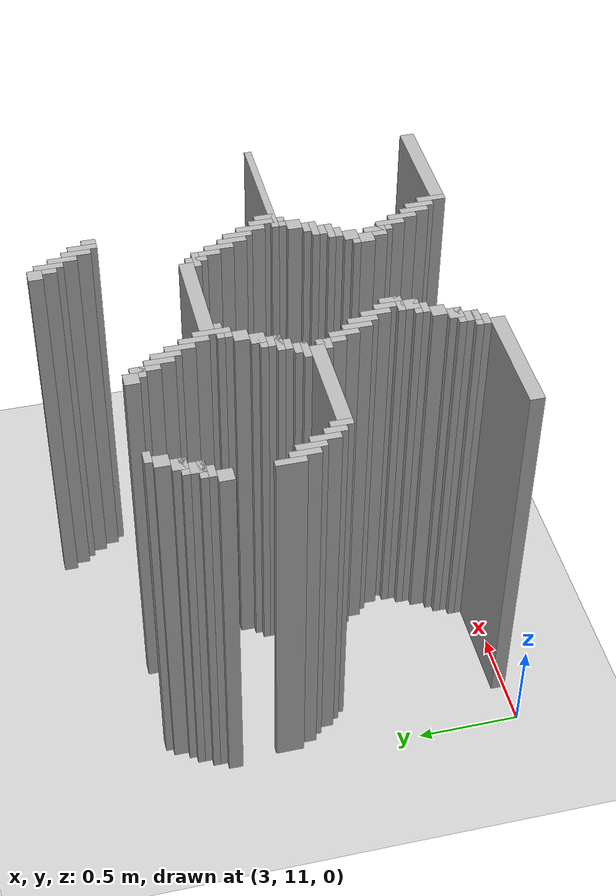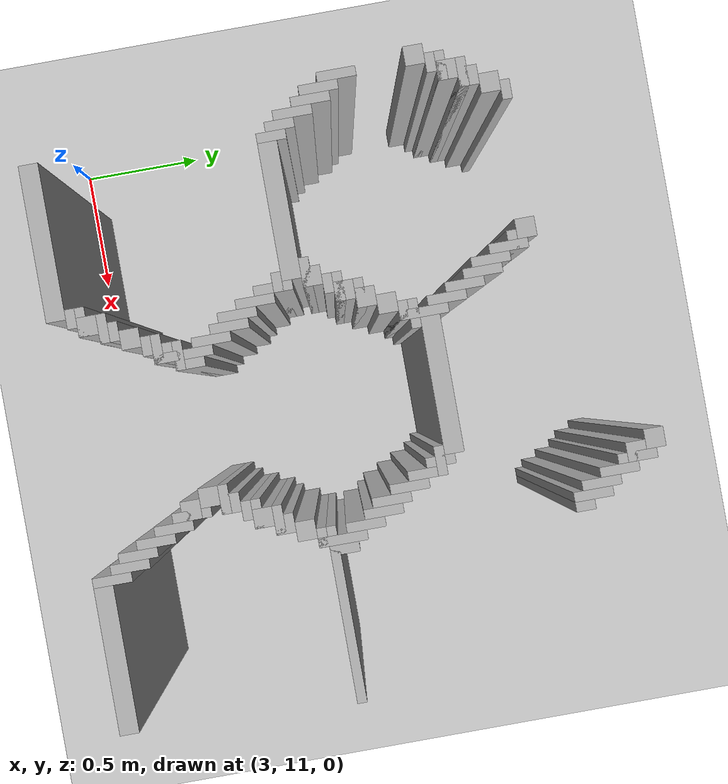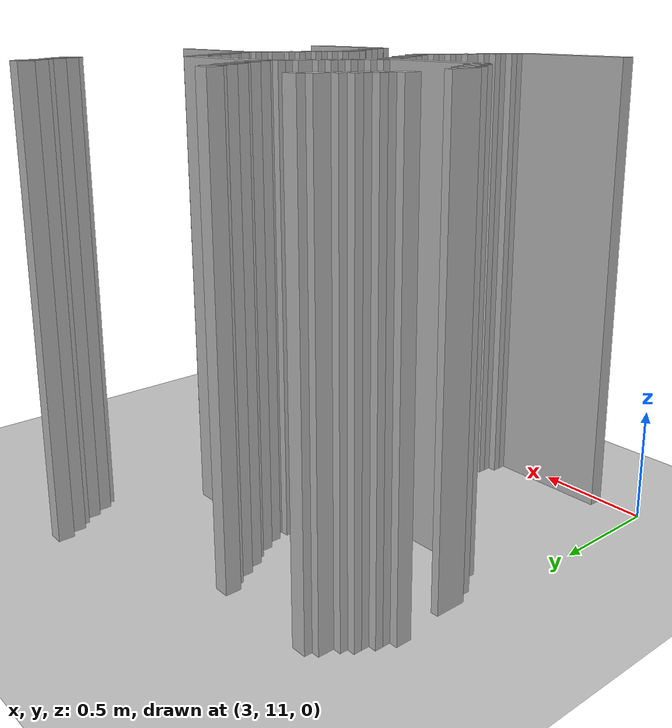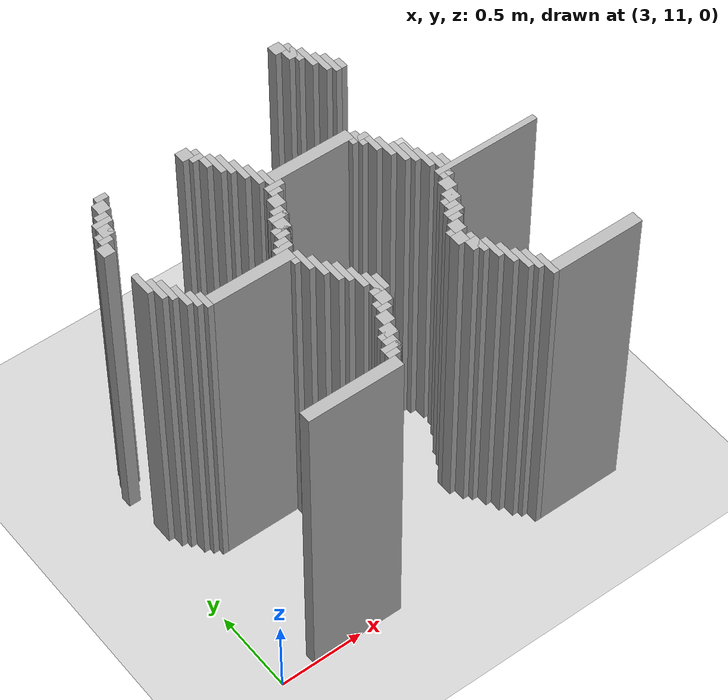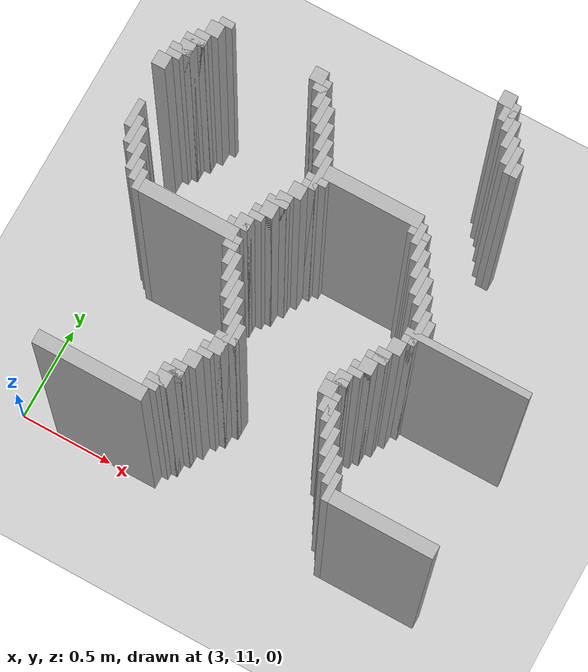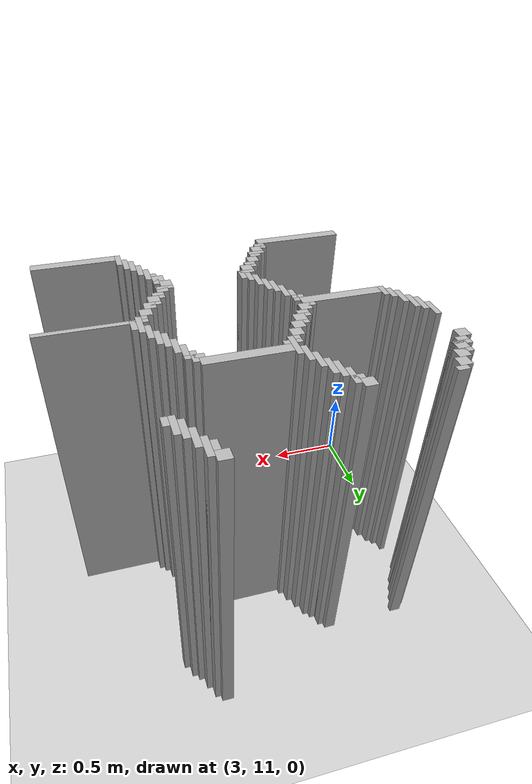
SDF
<sdf version="1.6">
 <world name="slam_world">
  <model name="ground_plane">
   <static>true</static>
   <link name="link">
    <collision name="collision">
     <geometry><plane><normal>0 0 1</normal><size>100 100</size></plane></geometry>
    </collision>
    <visual name="visual">
     <geometry><plane><normal>0 0 1</normal><size>100 100</size></plane></geometry>
     <material>
      <ambient>0.8 0.8 0.8 1</ambient>
      <diffuse>0.8 0.8 0.8 1</diffuse>
      <specular>0.8 0.8 0.8 1</specular>
     </material>
    </visual>
   </link>
  </model>
  <model name="wall_1465">
   <static>true</static>
   <pose>4.524361948955916 13.016241299303944 1.0 0 0 0</pose>
   <link name="link">
    <collision name="collision">
     <geometry><box><size>0.06960556844547564 0.06960556844547564 2.0</size></box></geometry>
    </collision>
    <visual name="visual">
     <geometry><box><size>0.06960556844547564 0.06960556844547564 2.0</size></box></geometry>
     <material><ambient>0.5 0.5 0.5 1</ambient><diffuse>0.7 0.7 0.7 1</diffuse></material>
    </visual>
   </link>
  </model>
  <model name="wall_1477">
   <static>true</static>
   <pose>4.576566125290023 12.946635730858468 1.0 0 0 0</pose>
   <link name="link">
    <collision name="collision">
     <geometry><box><size>0.03480278422273782 0.13921113689095127 2.0</size></box></geometry>
    </collision>
    <visual name="visual">
     <geometry><box><size>0.03480278422273782 0.13921113689095127 2.0</size></box></geometry>
     <material><ambient>0.5 0.5 0.5 1</ambient><diffuse>0.7 0.7 0.7 1</diffuse></material>
    </visual>
   </link>
  </model>
  <model name="wall_1489">
   <static>true</static>
   <pose>4.559164733178654 12.946635730858468 1.0 0 0 0</pose>
   <link name="link">
    <collision name="collision">
     <geometry><box><size>0.06960556844547564 0.06960556844547564 2.0</size></box></geometry>
    </collision>
    <visual name="visual">
     <geometry><box><size>0.06960556844547564 0.06960556844547564 2.0</size></box></geometry>
     <material><ambient>0.5 0.5 0.5 1</ambient><diffuse>0.7 0.7 0.7 1</diffuse></material>
    </visual>
   </link>
  </model>
  <model name="wall_1501">
   <static>true</static>
   <pose>4.611368909512761 12.877030162412993 1.0 0 0 0</pose>
   <link name="link">
    <collision name="collision">
     <geometry><box><size>0.03480278422273782 0.13921113689095127 2.0</size></box></geometry>
    </collision>
    <visual name="visual">
     <geometry><box><size>0.03480278422273782 0.13921113689095127 2.0</size></box></geometry>
     <material><ambient>0.5 0.5 0.5 1</ambient><diffuse>0.7 0.7 0.7 1</diffuse></material>
    </visual>
   </link>
  </model>
  <model name="wall_1519">
   <static>true</static>
   <pose>4.646171693735498 12.807424593967516 1.0 0 0 0</pose>
   <link name="link">
    <collision name="collision">
     <geometry><box><size>0.03480278422273782 0.13921113689095127 2.0</size></box></geometry>
    </collision>
    <visual name="visual">
     <geometry><box><size>0.03480278422273782 0.13921113689095127 2.0</size></box></geometry>
     <material><ambient>0.5 0.5 0.5 1</ambient><diffuse>0.7 0.7 0.7 1</diffuse></material>
    </visual>
   </link>
  </model>
  <model name="wall_1531">
   <static>true</static>
   <pose>4.6809744779582365 12.772621809744779 1.0 0 0 0</pose>
   <link name="link">
    <collision name="collision">
     <geometry><box><size>0.03480278422273782 0.13921113689095127 2.0</size></box></geometry>
    </collision>
    <visual name="visual">
     <geometry><box><size>0.03480278422273782 0.13921113689095127 2.0</size></box></geometry>
     <material><ambient>0.5 0.5 0.5 1</ambient><diffuse>0.7 0.7 0.7 1</diffuse></material>
    </visual>
   </link>
  </model>
  <model name="wall_1549">
   <static>true</static>
   <pose>4.715777262180974 12.737819025522041 1.0 0 0 0</pose>
   <link name="link">
    <collision name="collision">
     <geometry><box><size>0.03480278422273782 0.06960556844547564 2.0</size></box></geometry>
    </collision>
    <visual name="visual">
     <geometry><box><size>0.03480278422273782 0.06960556844547564 2.0</size></box></geometry>
     <material><ambient>0.5 0.5 0.5 1</ambient><diffuse>0.7 0.7 0.7 1</diffuse></material>
    </visual>
   </link>
  </model>
  <model name="wall_1560">
   <static>true</static>
   <pose>3.236658932714617 12.720417633410673 1.0 0 0 0</pose>
   <link name="link">
    <collision name="collision">
     <geometry><box><size>0.06960556844547564 0.03480278422273782 2.0</size></box></geometry>
    </collision>
    <visual name="visual">
     <geometry><box><size>0.06960556844547564 0.03480278422273782 2.0</size></box></geometry>
     <material><ambient>0.5 0.5 0.5 1</ambient><diffuse>0.7 0.7 0.7 1</diffuse></material>
    </visual>
   </link>
  </model>
  <model name="wall_1561">
   <static>true</static>
   <pose>3.7238979118329465 12.703016241299304 1.0 0 0 0</pose>
   <link name="link">
    <collision name="collision">
     <geometry><box><size>0.06960556844547564 0.06960556844547564 2.0</size></box></geometry>
    </collision>
    <visual name="visual">
     <geometry><box><size>0.06960556844547564 0.06960556844547564 2.0</size></box></geometry>
     <material><ambient>0.5 0.5 0.5 1</ambient><diffuse>0.7 0.7 0.7 1</diffuse></material>
    </visual>
   </link>
  </model>
  <model name="wall_1573">
   <static>true</static>
   <pose>3.201856148491879 12.668213457076565 1.0 0 0 0</pose>
   <link name="link">
    <collision name="collision">
     <geometry><box><size>0.06960556844547564 0.06960556844547564 2.0</size></box></geometry>
    </collision>
    <visual name="visual">
     <geometry><box><size>0.06960556844547564 0.06960556844547564 2.0</size></box></geometry>
     <material><ambient>0.5 0.5 0.5 1</ambient><diffuse>0.7 0.7 0.7 1</diffuse></material>
    </visual>
   </link>
  </model>
  <model name="wall_1574">
   <static>true</static>
   <pose>3.776102088167053 12.633410672853827 1.0 0 0 0</pose>
   <link name="link">
    <collision name="collision">
     <geometry><box><size>0.03480278422273782 0.13921113689095127 2.0</size></box></geometry>
    </collision>
    <visual name="visual">
     <geometry><box><size>0.03480278422273782 0.13921113689095127 2.0</size></box></geometry>
     <material><ambient>0.5 0.5 0.5 1</ambient><diffuse>0.7 0.7 0.7 1</diffuse></material>
    </visual>
   </link>
  </model>
  <model name="wall_1589">
   <static>true</static>
   <pose>3.7587006960556844 12.650812064965196 1.0 0 0 0</pose>
   <link name="link">
    <collision name="collision">
     <geometry><box><size>0.06960556844547564 0.03480278422273782 2.0</size></box></geometry>
    </collision>
    <visual name="visual">
     <geometry><box><size>0.06960556844547564 0.03480278422273782 2.0</size></box></geometry>
     <material><ambient>0.5 0.5 0.5 1</ambient><diffuse>0.7 0.7 0.7 1</diffuse></material>
    </visual>
   </link>
  </model>
  <model name="wall_1603">
   <static>true</static>
   <pose>3.167053364269141 12.59860788863109 1.0 0 0 0</pose>
   <link name="link">
    <collision name="collision">
     <geometry><box><size>0.06960556844547564 0.06960556844547564 2.0</size></box></geometry>
    </collision>
    <visual name="visual">
     <geometry><box><size>0.06960556844547564 0.06960556844547564 2.0</size></box></geometry>
     <material><ambient>0.5 0.5 0.5 1</ambient><diffuse>0.7 0.7 0.7 1</diffuse></material>
    </visual>
   </link>
  </model>
  <model name="wall_1604">
   <static>true</static>
   <pose>3.810904872389791 12.563805104408353 1.0 0 0 0</pose>
   <link name="link">
    <collision name="collision">
     <geometry><box><size>0.03480278422273782 0.13921113689095127 2.0</size></box></geometry>
    </collision>
    <visual name="visual">
     <geometry><box><size>0.03480278422273782 0.13921113689095127 2.0</size></box></geometry>
     <material><ambient>0.5 0.5 0.5 1</ambient><diffuse>0.7 0.7 0.7 1</diffuse></material>
    </visual>
   </link>
  </model>
  <model name="wall_1620">
   <static>true</static>
   <pose>3.1496519721577725 12.581206496519721 1.0 0 0 0</pose>
   <link name="link">
    <collision name="collision">
     <geometry><box><size>0.10440835266821345 0.03480278422273782 2.0</size></box></geometry>
    </collision>
    <visual name="visual">
     <geometry><box><size>0.10440835266821345 0.03480278422273782 2.0</size></box></geometry>
     <material><ambient>0.5 0.5 0.5 1</ambient><diffuse>0.7 0.7 0.7 1</diffuse></material>
    </visual>
   </link>
  </model>
  <model name="wall_1621">
   <static>true</static>
   <pose>3.845707656612529 12.529002320185615 1.0 0 0 0</pose>
   <link name="link">
    <collision name="collision">
     <geometry><box><size>0.03480278422273782 0.13921113689095127 2.0</size></box></geometry>
    </collision>
    <visual name="visual">
     <geometry><box><size>0.03480278422273782 0.13921113689095127 2.0</size></box></geometry>
     <material><ambient>0.5 0.5 0.5 1</ambient><diffuse>0.7 0.7 0.7 1</diffuse></material>
    </visual>
   </link>
  </model>
  <model name="wall_1635">
   <static>true</static>
   <pose>3.1322505800464038 12.529002320185615 1.0 0 0 0</pose>
   <link name="link">
    <collision name="collision">
     <geometry><box><size>0.06960556844547564 0.06960556844547564 2.0</size></box></geometry>
    </collision>
    <visual name="visual">
     <geometry><box><size>0.06960556844547564 0.06960556844547564 2.0</size></box></geometry>
     <material><ambient>0.5 0.5 0.5 1</ambient><diffuse>0.7 0.7 0.7 1</diffuse></material>
    </visual>
   </link>
  </model>
  <model name="wall_1648">
   <static>true</static>
   <pose>3.1148491879350346 12.511600928074245 1.0 0 0 0</pose>
   <link name="link">
    <collision name="collision">
     <geometry><box><size>0.10440835266821345 0.03480278422273782 2.0</size></box></geometry>
    </collision>
    <visual name="visual">
     <geometry><box><size>0.10440835266821345 0.03480278422273782 2.0</size></box></geometry>
     <material><ambient>0.5 0.5 0.5 1</ambient><diffuse>0.7 0.7 0.7 1</diffuse></material>
    </visual>
   </link>
  </model>
  <model name="wall_1649">
   <static>true</static>
   <pose>3.8805104408352666 12.459396751740138 1.0 0 0 0</pose>
   <link name="link">
    <collision name="collision">
     <geometry><box><size>0.03480278422273782 0.13921113689095127 2.0</size></box></geometry>
    </collision>
    <visual name="visual">
     <geometry><box><size>0.03480278422273782 0.13921113689095127 2.0</size></box></geometry>
     <material><ambient>0.5 0.5 0.5 1</ambient><diffuse>0.7 0.7 0.7 1</diffuse></material>
    </visual>
   </link>
  </model>
  <model name="wall_1663">
   <static>true</static>
   <pose>3.097447795823666 12.476798143851507 1.0 0 0 0</pose>
   <link name="link">
    <collision name="collision">
     <geometry><box><size>0.06960556844547564 0.03480278422273782 2.0</size></box></geometry>
    </collision>
    <visual name="visual">
     <geometry><box><size>0.06960556844547564 0.03480278422273782 2.0</size></box></geometry>
     <material><ambient>0.5 0.5 0.5 1</ambient><diffuse>0.7 0.7 0.7 1</diffuse></material>
    </visual>
   </link>
  </model>
  <model name="wall_1674">
   <static>true</static>
   <pose>3.062645011600928 12.424593967517401 1.0 0 0 0</pose>
   <link name="link">
    <collision name="collision">
     <geometry><box><size>0.06960556844547564 0.06960556844547564 2.0</size></box></geometry>
    </collision>
    <visual name="visual">
     <geometry><box><size>0.06960556844547564 0.06960556844547564 2.0</size></box></geometry>
     <material><ambient>0.5 0.5 0.5 1</ambient><diffuse>0.7 0.7 0.7 1</diffuse></material>
    </visual>
   </link>
  </model>
  <model name="wall_1675">
   <static>true</static>
   <pose>3.9153132250580045 12.389791183294664 1.0 0 0 0</pose>
   <link name="link">
    <collision name="collision">
     <geometry><box><size>0.03480278422273782 0.13921113689095127 2.0</size></box></geometry>
    </collision>
    <visual name="visual">
     <geometry><box><size>0.03480278422273782 0.13921113689095127 2.0</size></box></geometry>
     <material><ambient>0.5 0.5 0.5 1</ambient><diffuse>0.7 0.7 0.7 1</diffuse></material>
    </visual>
   </link>
  </model>
  <model name="wall_1692">
   <static>true</static>
   <pose>3.9501160092807424 12.302784222737818 1.0 0 0 0</pose>
   <link name="link">
    <collision name="collision">
     <geometry><box><size>0.03480278422273782 0.17401392111368907 2.0</size></box></geometry>
    </collision>
    <visual name="visual">
     <geometry><box><size>0.03480278422273782 0.17401392111368907 2.0</size></box></geometry>
     <material><ambient>0.5 0.5 0.5 1</ambient><diffuse>0.7 0.7 0.7 1</diffuse></material>
    </visual>
   </link>
  </model>
  <model name="wall_1709">
   <static>true</static>
   <pose>4.211136890951276 12.320185614849187 1.0 0 0 0</pose>
   <link name="link">
    <collision name="collision">
     <geometry><box><size>0.4872389791183295 0.06960556844547564 2.0</size></box></geometry>
    </collision>
    <visual name="visual">
     <geometry><box><size>0.4872389791183295 0.06960556844547564 2.0</size></box></geometry>
     <material><ambient>0.5 0.5 0.5 1</ambient><diffuse>0.7 0.7 0.7 1</diffuse></material>
    </visual>
   </link>
  </model>
  <model name="wall_1722">
   <static>true</static>
   <pose>4.472157772621809 12.267981438515081 1.0 0 0 0</pose>
   <link name="link">
    <collision name="collision">
     <geometry><box><size>0.03480278422273782 0.10440835266821345 2.0</size></box></geometry>
    </collision>
    <visual name="visual">
     <geometry><box><size>0.03480278422273782 0.10440835266821345 2.0</size></box></geometry>
     <material><ambient>0.5 0.5 0.5 1</ambient><diffuse>0.7 0.7 0.7 1</diffuse></material>
    </visual>
   </link>
  </model>
  <model name="wall_1736">
   <static>true</static>
   <pose>3.9501160092807424 12.267981438515081 1.0 0 0 0</pose>
   <link name="link">
    <collision name="collision">
     <geometry><box><size>0.10440835266821345 0.03480278422273782 2.0</size></box></geometry>
    </collision>
    <visual name="visual">
     <geometry><box><size>0.10440835266821345 0.03480278422273782 2.0</size></box></geometry>
     <material><ambient>0.5 0.5 0.5 1</ambient><diffuse>0.7 0.7 0.7 1</diffuse></material>
    </visual>
   </link>
  </model>
  <model name="wall_1737">
   <static>true</static>
   <pose>4.472157772621809 12.267981438515081 1.0 0 0 0</pose>
   <link name="link">
    <collision name="collision">
     <geometry><box><size>0.10440835266821345 0.03480278422273782 2.0</size></box></geometry>
    </collision>
    <visual name="visual">
     <geometry><box><size>0.10440835266821345 0.03480278422273782 2.0</size></box></geometry>
     <material><ambient>0.5 0.5 0.5 1</ambient><diffuse>0.7 0.7 0.7 1</diffuse></material>
    </visual>
   </link>
  </model>
  <model name="wall_1754">
   <static>true</static>
   <pose>3.932714617169373 12.233178654292344 1.0 0 0 0</pose>
   <link name="link">
    <collision name="collision">
     <geometry><box><size>0.06960556844547564 0.03480278422273782 2.0</size></box></geometry>
    </collision>
    <visual name="visual">
     <geometry><box><size>0.06960556844547564 0.03480278422273782 2.0</size></box></geometry>
     <material><ambient>0.5 0.5 0.5 1</ambient><diffuse>0.7 0.7 0.7 1</diffuse></material>
    </visual>
   </link>
  </model>
  <model name="wall_1755">
   <static>true</static>
   <pose>4.506960556844548 12.198375870069604 1.0 0 0 0</pose>
   <link name="link">
    <collision name="collision">
     <geometry><box><size>0.03480278422273782 0.10440835266821345 2.0</size></box></geometry>
    </collision>
    <visual name="visual">
     <geometry><box><size>0.03480278422273782 0.10440835266821345 2.0</size></box></geometry>
     <material><ambient>0.5 0.5 0.5 1</ambient><diffuse>0.7 0.7 0.7 1</diffuse></material>
    </visual>
   </link>
  </model>
  <model name="wall_1769">
   <static>true</static>
   <pose>3.0800464037122968 12.146171693735498 1.0 0 0 0</pose>
   <link name="link">
    <collision name="collision">
     <geometry><box><size>0.03480278422273782 0.13921113689095127 2.0</size></box></geometry>
    </collision>
    <visual name="visual">
     <geometry><box><size>0.03480278422273782 0.13921113689095127 2.0</size></box></geometry>
     <material><ambient>0.5 0.5 0.5 1</ambient><diffuse>0.7 0.7 0.7 1</diffuse></material>
    </visual>
   </link>
  </model>
  <model name="wall_1770">
   <static>true</static>
   <pose>3.897911832946636 12.180974477958236 1.0 0 0 0</pose>
   <link name="link">
    <collision name="collision">
     <geometry><box><size>0.06960556844547564 0.06960556844547564 2.0</size></box></geometry>
    </collision>
    <visual name="visual">
     <geometry><box><size>0.06960556844547564 0.06960556844547564 2.0</size></box></geometry>
     <material><ambient>0.5 0.5 0.5 1</ambient><diffuse>0.7 0.7 0.7 1</diffuse></material>
    </visual>
   </link>
  </model>
  <model name="wall_1771">
   <static>true</static>
   <pose>4.541763341067285 12.146171693735498 1.0 0 0 0</pose>
   <link name="link">
    <collision name="collision">
     <geometry><box><size>0.03480278422273782 0.13921113689095127 2.0</size></box></geometry>
    </collision>
    <visual name="visual">
     <geometry><box><size>0.03480278422273782 0.13921113689095127 2.0</size></box></geometry>
     <material><ambient>0.5 0.5 0.5 1</ambient><diffuse>0.7 0.7 0.7 1</diffuse></material>
    </visual>
   </link>
  </model>
  <model name="wall_1785">
   <static>true</static>
   <pose>3.1148491879350346 12.076566125290023 1.0 0 0 0</pose>
   <link name="link">
    <collision name="collision">
     <geometry><box><size>0.03480278422273782 0.13921113689095127 2.0</size></box></geometry>
    </collision>
    <visual name="visual">
     <geometry><box><size>0.03480278422273782 0.13921113689095127 2.0</size></box></geometry>
     <material><ambient>0.5 0.5 0.5 1</ambient><diffuse>0.7 0.7 0.7 1</diffuse></material>
    </visual>
   </link>
  </model>
  <model name="wall_1786">
   <static>true</static>
   <pose>3.863109048723898 12.11136890951276 1.0 0 0 0</pose>
   <link name="link">
    <collision name="collision">
     <geometry><box><size>0.06960556844547564 0.06960556844547564 2.0</size></box></geometry>
    </collision>
    <visual name="visual">
     <geometry><box><size>0.06960556844547564 0.06960556844547564 2.0</size></box></geometry>
     <material><ambient>0.5 0.5 0.5 1</ambient><diffuse>0.7 0.7 0.7 1</diffuse></material>
    </visual>
   </link>
  </model>
  <model name="wall_1787">
   <static>true</static>
   <pose>4.576566125290023 12.076566125290023 1.0 0 0 0</pose>
   <link name="link">
    <collision name="collision">
     <geometry><box><size>0.03480278422273782 0.13921113689095127 2.0</size></box></geometry>
    </collision>
    <visual name="visual">
     <geometry><box><size>0.03480278422273782 0.13921113689095127 2.0</size></box></geometry>
     <material><ambient>0.5 0.5 0.5 1</ambient><diffuse>0.7 0.7 0.7 1</diffuse></material>
    </visual>
   </link>
  </model>
  <model name="wall_1801">
   <static>true</static>
   <pose>3.1496519721577725 12.041763341067284 1.0 0 0 0</pose>
   <link name="link">
    <collision name="collision">
     <geometry><box><size>0.03480278422273782 0.13921113689095127 2.0</size></box></geometry>
    </collision>
    <visual name="visual">
     <geometry><box><size>0.03480278422273782 0.13921113689095127 2.0</size></box></geometry>
     <material><ambient>0.5 0.5 0.5 1</ambient><diffuse>0.7 0.7 0.7 1</diffuse></material>
    </visual>
   </link>
  </model>
  <model name="wall_1802">
   <static>true</static>
   <pose>3.845707656612529 12.093967517401392 1.0 0 0 0</pose>
   <link name="link">
    <collision name="collision">
     <geometry><box><size>0.10440835266821345 0.03480278422273782 2.0</size></box></geometry>
    </collision>
    <visual name="visual">
     <geometry><box><size>0.10440835266821345 0.03480278422273782 2.0</size></box></geometry>
     <material><ambient>0.5 0.5 0.5 1</ambient><diffuse>0.7 0.7 0.7 1</diffuse></material>
    </visual>
   </link>
  </model>
  <model name="wall_1803">
   <static>true</static>
   <pose>4.611368909512761 12.041763341067284 1.0 0 0 0</pose>
   <link name="link">
    <collision name="collision">
     <geometry><box><size>0.03480278422273782 0.13921113689095127 2.0</size></box></geometry>
    </collision>
    <visual name="visual">
     <geometry><box><size>0.03480278422273782 0.13921113689095127 2.0</size></box></geometry>
     <material><ambient>0.5 0.5 0.5 1</ambient><diffuse>0.7 0.7 0.7 1</diffuse></material>
    </visual>
   </link>
  </model>
  <model name="wall_1815">
   <static>true</static>
   <pose>3.82830626450116 12.041763341067284 1.0 0 0 0</pose>
   <link name="link">
    <collision name="collision">
     <geometry><box><size>0.06960556844547564 0.06960556844547564 2.0</size></box></geometry>
    </collision>
    <visual name="visual">
     <geometry><box><size>0.06960556844547564 0.06960556844547564 2.0</size></box></geometry>
     <material><ambient>0.5 0.5 0.5 1</ambient><diffuse>0.7 0.7 0.7 1</diffuse></material>
    </visual>
   </link>
  </model>
  <model name="wall_1827">
   <static>true</static>
   <pose>3.1844547563805103 11.97215777262181 1.0 0 0 0</pose>
   <link name="link">
    <collision name="collision">
     <geometry><box><size>0.03480278422273782 0.13921113689095127 2.0</size></box></geometry>
    </collision>
    <visual name="visual">
     <geometry><box><size>0.03480278422273782 0.13921113689095127 2.0</size></box></geometry>
     <material><ambient>0.5 0.5 0.5 1</ambient><diffuse>0.7 0.7 0.7 1</diffuse></material>
    </visual>
   </link>
  </model>
  <model name="wall_1828">
   <static>true</static>
   <pose>3.810904872389791 12.024361948955915 1.0 0 0 0</pose>
   <link name="link">
    <collision name="collision">
     <geometry><box><size>0.10440835266821345 0.03480278422273782 2.0</size></box></geometry>
    </collision>
    <visual name="visual">
     <geometry><box><size>0.10440835266821345 0.03480278422273782 2.0</size></box></geometry>
     <material><ambient>0.5 0.5 0.5 1</ambient><diffuse>0.7 0.7 0.7 1</diffuse></material>
    </visual>
   </link>
  </model>
  <model name="wall_1829">
   <static>true</static>
   <pose>4.646171693735498 11.97215777262181 1.0 0 0 0</pose>
   <link name="link">
    <collision name="collision">
     <geometry><box><size>0.03480278422273782 0.13921113689095127 2.0</size></box></geometry>
    </collision>
    <visual name="visual">
     <geometry><box><size>0.03480278422273782 0.13921113689095127 2.0</size></box></geometry>
     <material><ambient>0.5 0.5 0.5 1</ambient><diffuse>0.7 0.7 0.7 1</diffuse></material>
    </visual>
   </link>
  </model>
  <model name="wall_1841">
   <static>true</static>
   <pose>3.793503480278422 11.989559164733178 1.0 0 0 0</pose>
   <link name="link">
    <collision name="collision">
     <geometry><box><size>0.06960556844547564 0.03480278422273782 2.0</size></box></geometry>
    </collision>
    <visual name="visual">
     <geometry><box><size>0.06960556844547564 0.03480278422273782 2.0</size></box></geometry>
     <material><ambient>0.5 0.5 0.5 1</ambient><diffuse>0.7 0.7 0.7 1</diffuse></material>
    </visual>
   </link>
  </model>
  <model name="wall_1851">
   <static>true</static>
   <pose>3.219257540603248 11.919953596287703 1.0 0 0 0</pose>
   <link name="link">
    <collision name="collision">
     <geometry><box><size>0.03480278422273782 0.10440835266821345 2.0</size></box></geometry>
    </collision>
    <visual name="visual">
     <geometry><box><size>0.03480278422273782 0.10440835266821345 2.0</size></box></geometry>
     <material><ambient>0.5 0.5 0.5 1</ambient><diffuse>0.7 0.7 0.7 1</diffuse></material>
    </visual>
   </link>
  </model>
  <model name="wall_1852">
   <static>true</static>
   <pose>3.7587006960556844 11.937354988399072 1.0 0 0 0</pose>
   <link name="link">
    <collision name="collision">
     <geometry><box><size>0.06960556844547564 0.06960556844547564 2.0</size></box></geometry>
    </collision>
    <visual name="visual">
     <geometry><box><size>0.06960556844547564 0.06960556844547564 2.0</size></box></geometry>
     <material><ambient>0.5 0.5 0.5 1</ambient><diffuse>0.7 0.7 0.7 1</diffuse></material>
    </visual>
   </link>
  </model>
  <model name="wall_1853">
   <static>true</static>
   <pose>4.6809744779582365 11.885150812064964 1.0 0 0 0</pose>
   <link name="link">
    <collision name="collision">
     <geometry><box><size>0.03480278422273782 0.17401392111368907 2.0</size></box></geometry>
    </collision>
    <visual name="visual">
     <geometry><box><size>0.03480278422273782 0.17401392111368907 2.0</size></box></geometry>
     <material><ambient>0.5 0.5 0.5 1</ambient><diffuse>0.7 0.7 0.7 1</diffuse></material>
    </visual>
   </link>
  </model>
  <model name="wall_1867">
   <static>true</static>
   <pose>3.254060324825986 11.885150812064964 1.0 0 0 0</pose>
   <link name="link">
    <collision name="collision">
     <geometry><box><size>0.03480278422273782 0.10440835266821345 2.0</size></box></geometry>
    </collision>
    <visual name="visual">
     <geometry><box><size>0.03480278422273782 0.10440835266821345 2.0</size></box></geometry>
     <material><ambient>0.5 0.5 0.5 1</ambient><diffuse>0.7 0.7 0.7 1</diffuse></material>
    </visual>
   </link>
  </model>
  <model name="wall_1868">
   <static>true</static>
   <pose>3.741299303944315 11.919953596287703 1.0 0 0 0</pose>
   <link name="link">
    <collision name="collision">
     <geometry><box><size>0.10440835266821345 0.03480278422273782 2.0</size></box></geometry>
    </collision>
    <visual name="visual">
     <geometry><box><size>0.10440835266821345 0.03480278422273782 2.0</size></box></geometry>
     <material><ambient>0.5 0.5 0.5 1</ambient><diffuse>0.7 0.7 0.7 1</diffuse></material>
    </visual>
   </link>
  </model>
  <model name="wall_1869">
   <static>true</static>
   <pose>4.715777262180974 11.885150812064964 1.0 0 0 0</pose>
   <link name="link">
    <collision name="collision">
     <geometry><box><size>0.03480278422273782 0.10440835266821345 2.0</size></box></geometry>
    </collision>
    <visual name="visual">
     <geometry><box><size>0.03480278422273782 0.10440835266821345 2.0</size></box></geometry>
     <material><ambient>0.5 0.5 0.5 1</ambient><diffuse>0.7 0.7 0.7 1</diffuse></material>
    </visual>
   </link>
  </model>
  <model name="wall_1881">
   <static>true</static>
   <pose>3.51508120649652 11.867749419953595 1.0 0 0 0</pose>
   <link name="link">
    <collision name="collision">
     <geometry><box><size>0.4872389791183295 0.06960556844547564 2.0</size></box></geometry>
    </collision>
    <visual name="visual">
     <geometry><box><size>0.4872389791183295 0.06960556844547564 2.0</size></box></geometry>
     <material><ambient>0.5 0.5 0.5 1</ambient><diffuse>0.7 0.7 0.7 1</diffuse></material>
    </visual>
   </link>
  </model>
  <model name="wall_1893">
   <static>true</static>
   <pose>3.776102088167053 11.79814385150812 1.0 0 0 0</pose>
   <link name="link">
    <collision name="collision">
     <geometry><box><size>0.03480278422273782 0.13921113689095127 2.0</size></box></geometry>
    </collision>
    <visual name="visual">
     <geometry><box><size>0.03480278422273782 0.13921113689095127 2.0</size></box></geometry>
     <material><ambient>0.5 0.5 0.5 1</ambient><diffuse>0.7 0.7 0.7 1</diffuse></material>
    </visual>
   </link>
  </model>
  <model name="wall_1894">
   <static>true</static>
   <pose>4.94199535962877 11.850348027842227 1.0 0 0 0</pose>
   <link name="link">
    <collision name="collision">
     <geometry><box><size>0.6264501160092807 0.03480278422273782 2.0</size></box></geometry>
    </collision>
    <visual name="visual">
     <geometry><box><size>0.6264501160092807 0.03480278422273782 2.0</size></box></geometry>
     <material><ambient>0.5 0.5 0.5 1</ambient><diffuse>0.7 0.7 0.7 1</diffuse></material>
    </visual>
   </link>
  </model>
  <model name="wall_1907">
   <static>true</static>
   <pose>3.7587006960556844 11.81554524361949 1.0 0 0 0</pose>
   <link name="link">
    <collision name="collision">
     <geometry><box><size>0.06960556844547564 0.03480278422273782 2.0</size></box></geometry>
    </collision>
    <visual name="visual">
     <geometry><box><size>0.06960556844547564 0.03480278422273782 2.0</size></box></geometry>
     <material><ambient>0.5 0.5 0.5 1</ambient><diffuse>0.7 0.7 0.7 1</diffuse></material>
    </visual>
   </link>
  </model>
  <model name="wall_1908">
   <static>true</static>
   <pose>4.663573085846868 11.81554524361949 1.0 0 0 0</pose>
   <link name="link">
    <collision name="collision">
     <geometry><box><size>0.06960556844547564 0.03480278422273782 2.0</size></box></geometry>
    </collision>
    <visual name="visual">
     <geometry><box><size>0.06960556844547564 0.03480278422273782 2.0</size></box></geometry>
     <material><ambient>0.5 0.5 0.5 1</ambient><diffuse>0.7 0.7 0.7 1</diffuse></material>
    </visual>
   </link>
  </model>
  <model name="wall_1923">
   <static>true</static>
   <pose>3.810904872389791 11.728538283062644 1.0 0 0 0</pose>
   <link name="link">
    <collision name="collision">
     <geometry><box><size>0.03480278422273782 0.13921113689095127 2.0</size></box></geometry>
    </collision>
    <visual name="visual">
     <geometry><box><size>0.03480278422273782 0.13921113689095127 2.0</size></box></geometry>
     <material><ambient>0.5 0.5 0.5 1</ambient><diffuse>0.7 0.7 0.7 1</diffuse></material>
    </visual>
   </link>
  </model>
  <model name="wall_1924">
   <static>true</static>
   <pose>4.6287703016241295 11.763341067285383 1.0 0 0 0</pose>
   <link name="link">
    <collision name="collision">
     <geometry><box><size>0.06960556844547564 0.06960556844547564 2.0</size></box></geometry>
    </collision>
    <visual name="visual">
     <geometry><box><size>0.06960556844547564 0.06960556844547564 2.0</size></box></geometry>
     <material><ambient>0.5 0.5 0.5 1</ambient><diffuse>0.7 0.7 0.7 1</diffuse></material>
    </visual>
   </link>
  </model>
  <model name="wall_1939">
   <static>true</static>
   <pose>3.845707656612529 11.658932714617169 1.0 0 0 0</pose>
   <link name="link">
    <collision name="collision">
     <geometry><box><size>0.03480278422273782 0.13921113689095127 2.0</size></box></geometry>
    </collision>
    <visual name="visual">
     <geometry><box><size>0.03480278422273782 0.13921113689095127 2.0</size></box></geometry>
     <material><ambient>0.5 0.5 0.5 1</ambient><diffuse>0.7 0.7 0.7 1</diffuse></material>
    </visual>
   </link>
  </model>
  <model name="wall_1940">
   <static>true</static>
   <pose>4.593967517401392 11.693735498839906 1.0 0 0 0</pose>
   <link name="link">
    <collision name="collision">
     <geometry><box><size>0.06960556844547564 0.06960556844547564 2.0</size></box></geometry>
    </collision>
    <visual name="visual">
     <geometry><box><size>0.06960556844547564 0.06960556844547564 2.0</size></box></geometry>
     <material><ambient>0.5 0.5 0.5 1</ambient><diffuse>0.7 0.7 0.7 1</diffuse></material>
    </visual>
   </link>
  </model>
  <model name="wall_1955">
   <static>true</static>
   <pose>3.8805104408352666 11.624129930394432 1.0 0 0 0</pose>
   <link name="link">
    <collision name="collision">
     <geometry><box><size>0.03480278422273782 0.13921113689095127 2.0</size></box></geometry>
    </collision>
    <visual name="visual">
     <geometry><box><size>0.03480278422273782 0.13921113689095127 2.0</size></box></geometry>
     <material><ambient>0.5 0.5 0.5 1</ambient><diffuse>0.7 0.7 0.7 1</diffuse></material>
    </visual>
   </link>
  </model>
  <model name="wall_1956">
   <static>true</static>
   <pose>4.576566125290023 11.676334106728538 1.0 0 0 0</pose>
   <link name="link">
    <collision name="collision">
     <geometry><box><size>0.10440835266821345 0.03480278422273782 2.0</size></box></geometry>
    </collision>
    <visual name="visual">
     <geometry><box><size>0.10440835266821345 0.03480278422273782 2.0</size></box></geometry>
     <material><ambient>0.5 0.5 0.5 1</ambient><diffuse>0.7 0.7 0.7 1</diffuse></material>
    </visual>
   </link>
  </model>
  <model name="wall_1970">
   <static>true</static>
   <pose>4.559164733178654 11.624129930394432 1.0 0 0 0</pose>
   <link name="link">
    <collision name="collision">
     <geometry><box><size>0.06960556844547564 0.06960556844547564 2.0</size></box></geometry>
    </collision>
    <visual name="visual">
     <geometry><box><size>0.06960556844547564 0.06960556844547564 2.0</size></box></geometry>
     <material><ambient>0.5 0.5 0.5 1</ambient><diffuse>0.7 0.7 0.7 1</diffuse></material>
    </visual>
   </link>
  </model>
  <model name="wall_1981">
   <static>true</static>
   <pose>3.9153132250580045 11.554524361948955 1.0 0 0 0</pose>
   <link name="link">
    <collision name="collision">
     <geometry><box><size>0.03480278422273782 0.13921113689095127 2.0</size></box></geometry>
    </collision>
    <visual name="visual">
     <geometry><box><size>0.03480278422273782 0.13921113689095127 2.0</size></box></geometry>
     <material><ambient>0.5 0.5 0.5 1</ambient><diffuse>0.7 0.7 0.7 1</diffuse></material>
    </visual>
   </link>
  </model>
  <model name="wall_1982">
   <static>true</static>
   <pose>4.541763341067285 11.606728538283063 1.0 0 0 0</pose>
   <link name="link">
    <collision name="collision">
     <geometry><box><size>0.10440835266821345 0.03480278422273782 2.0</size></box></geometry>
    </collision>
    <visual name="visual">
     <geometry><box><size>0.10440835266821345 0.03480278422273782 2.0</size></box></geometry>
     <material><ambient>0.5 0.5 0.5 1</ambient><diffuse>0.7 0.7 0.7 1</diffuse></material>
    </visual>
   </link>
  </model>
  <model name="wall_1996">
   <static>true</static>
   <pose>4.524361948955916 11.571925754060324 1.0 0 0 0</pose>
   <link name="link">
    <collision name="collision">
     <geometry><box><size>0.06960556844547564 0.03480278422273782 2.0</size></box></geometry>
    </collision>
    <visual name="visual">
     <geometry><box><size>0.06960556844547564 0.03480278422273782 2.0</size></box></geometry>
     <material><ambient>0.5 0.5 0.5 1</ambient><diffuse>0.7 0.7 0.7 1</diffuse></material>
    </visual>
   </link>
  </model>
  <model name="wall_2004">
   <static>true</static>
   <pose>3.9501160092807424 11.450116009280743 1.0 0 0 0</pose>
   <link name="link">
    <collision name="collision">
     <geometry><box><size>0.03480278422273782 0.2088167053364269 2.0</size></box></geometry>
    </collision>
    <visual name="visual">
     <geometry><box><size>0.03480278422273782 0.2088167053364269 2.0</size></box></geometry>
     <material><ambient>0.5 0.5 0.5 1</ambient><diffuse>0.7 0.7 0.7 1</diffuse></material>
    </visual>
   </link>
  </model>
  <model name="wall_2005">
   <static>true</static>
   <pose>4.489559164733178 11.519721577726218 1.0 0 0 0</pose>
   <link name="link">
    <collision name="collision">
     <geometry><box><size>0.06960556844547564 0.06960556844547564 2.0</size></box></geometry>
    </collision>
    <visual name="visual">
     <geometry><box><size>0.06960556844547564 0.06960556844547564 2.0</size></box></geometry>
     <material><ambient>0.5 0.5 0.5 1</ambient><diffuse>0.7 0.7 0.7 1</diffuse></material>
    </visual>
   </link>
  </model>
  <model name="wall_2019">
   <static>true</static>
   <pose>3.98491879350348 11.467517401392112 1.0 0 0 0</pose>
   <link name="link">
    <collision name="collision">
     <geometry><box><size>0.03480278422273782 0.10440835266821345 2.0</size></box></geometry>
    </collision>
    <visual name="visual">
     <geometry><box><size>0.03480278422273782 0.10440835266821345 2.0</size></box></geometry>
     <material><ambient>0.5 0.5 0.5 1</ambient><diffuse>0.7 0.7 0.7 1</diffuse></material>
    </visual>
   </link>
  </model>
  <model name="wall_2020">
   <static>true</static>
   <pose>4.472157772621809 11.502320185614849 1.0 0 0 0</pose>
   <link name="link">
    <collision name="collision">
     <geometry><box><size>0.10440835266821345 0.03480278422273782 2.0</size></box></geometry>
    </collision>
    <visual name="visual">
     <geometry><box><size>0.10440835266821345 0.03480278422273782 2.0</size></box></geometry>
     <material><ambient>0.5 0.5 0.5 1</ambient><diffuse>0.7 0.7 0.7 1</diffuse></material>
    </visual>
   </link>
  </model>
  <model name="wall_2035">
   <static>true</static>
   <pose>4.454756380510441 11.450116009280743 1.0 0 0 0</pose>
   <link name="link">
    <collision name="collision">
     <geometry><box><size>0.06960556844547564 0.06960556844547564 2.0</size></box></geometry>
    </collision>
    <visual name="visual">
     <geometry><box><size>0.06960556844547564 0.06960556844547564 2.0</size></box></geometry>
     <material><ambient>0.5 0.5 0.5 1</ambient><diffuse>0.7 0.7 0.7 1</diffuse></material>
    </visual>
   </link>
  </model>
  <model name="wall_2046">
   <static>true</static>
   <pose>3.9501160092807424 11.432714617169372 1.0 0 0 0</pose>
   <link name="link">
    <collision name="collision">
     <geometry><box><size>0.10440835266821345 0.03480278422273782 2.0</size></box></geometry>
    </collision>
    <visual name="visual">
     <geometry><box><size>0.10440835266821345 0.03480278422273782 2.0</size></box></geometry>
     <material><ambient>0.5 0.5 0.5 1</ambient><diffuse>0.7 0.7 0.7 1</diffuse></material>
    </visual>
   </link>
  </model>
  <model name="wall_2047">
   <static>true</static>
   <pose>4.506960556844548 11.380510440835266 1.0 0 0 0</pose>
   <link name="link">
    <collision name="collision">
     <geometry><box><size>0.03480278422273782 0.13921113689095127 2.0</size></box></geometry>
    </collision>
    <visual name="visual">
     <geometry><box><size>0.03480278422273782 0.13921113689095127 2.0</size></box></geometry>
     <material><ambient>0.5 0.5 0.5 1</ambient><diffuse>0.7 0.7 0.7 1</diffuse></material>
    </visual>
   </link>
  </model>
  <model name="wall_2057">
   <static>true</static>
   <pose>3.932714617169373 11.380510440835266 1.0 0 0 0</pose>
   <link name="link">
    <collision name="collision">
     <geometry><box><size>0.06960556844547564 0.06960556844547564 2.0</size></box></geometry>
    </collision>
    <visual name="visual">
     <geometry><box><size>0.06960556844547564 0.06960556844547564 2.0</size></box></geometry>
     <material><ambient>0.5 0.5 0.5 1</ambient><diffuse>0.7 0.7 0.7 1</diffuse></material>
    </visual>
   </link>
  </model>
  <model name="wall_2058">
   <static>true</static>
   <pose>4.489559164733178 11.380510440835266 1.0 0 0 0</pose>
   <link name="link">
    <collision name="collision">
     <geometry><box><size>0.06960556844547564 0.06960556844547564 2.0</size></box></geometry>
    </collision>
    <visual name="visual">
     <geometry><box><size>0.06960556844547564 0.06960556844547564 2.0</size></box></geometry>
     <material><ambient>0.5 0.5 0.5 1</ambient><diffuse>0.7 0.7 0.7 1</diffuse></material>
    </visual>
   </link>
  </model>
  <model name="wall_2069">
   <static>true</static>
   <pose>3.9153132250580045 11.363109048723897 1.0 0 0 0</pose>
   <link name="link">
    <collision name="collision">
     <geometry><box><size>0.10440835266821345 0.03480278422273782 2.0</size></box></geometry>
    </collision>
    <visual name="visual">
     <geometry><box><size>0.10440835266821345 0.03480278422273782 2.0</size></box></geometry>
     <material><ambient>0.5 0.5 0.5 1</ambient><diffuse>0.7 0.7 0.7 1</diffuse></material>
    </visual>
   </link>
  </model>
  <model name="wall_2070">
   <static>true</static>
   <pose>4.541763341067285 11.310904872389791 1.0 0 0 0</pose>
   <link name="link">
    <collision name="collision">
     <geometry><box><size>0.03480278422273782 0.13921113689095127 2.0</size></box></geometry>
    </collision>
    <visual name="visual">
     <geometry><box><size>0.03480278422273782 0.13921113689095127 2.0</size></box></geometry>
     <material><ambient>0.5 0.5 0.5 1</ambient><diffuse>0.7 0.7 0.7 1</diffuse></material>
    </visual>
   </link>
  </model>
  <model name="wall_2080">
   <static>true</static>
   <pose>3.897911832946636 11.32830626450116 1.0 0 0 0</pose>
   <link name="link">
    <collision name="collision">
     <geometry><box><size>0.06960556844547564 0.03480278422273782 2.0</size></box></geometry>
    </collision>
    <visual name="visual">
     <geometry><box><size>0.06960556844547564 0.03480278422273782 2.0</size></box></geometry>
     <material><ambient>0.5 0.5 0.5 1</ambient><diffuse>0.7 0.7 0.7 1</diffuse></material>
    </visual>
   </link>
  </model>
  <model name="wall_2089">
   <static>true</static>
   <pose>3.863109048723898 11.276102088167052 1.0 0 0 0</pose>
   <link name="link">
    <collision name="collision">
     <geometry><box><size>0.06960556844547564 0.06960556844547564 2.0</size></box></geometry>
    </collision>
    <visual name="visual">
     <geometry><box><size>0.06960556844547564 0.06960556844547564 2.0</size></box></geometry>
     <material><ambient>0.5 0.5 0.5 1</ambient><diffuse>0.7 0.7 0.7 1</diffuse></material>
    </visual>
   </link>
  </model>
  <model name="wall_2090">
   <static>true</static>
   <pose>4.576566125290023 11.241299303944315 1.0 0 0 0</pose>
   <link name="link">
    <collision name="collision">
     <geometry><box><size>0.03480278422273782 0.13921113689095127 2.0</size></box></geometry>
    </collision>
    <visual name="visual">
     <geometry><box><size>0.03480278422273782 0.13921113689095127 2.0</size></box></geometry>
     <material><ambient>0.5 0.5 0.5 1</ambient><diffuse>0.7 0.7 0.7 1</diffuse></material>
    </visual>
   </link>
  </model>
  <model name="wall_2101">
   <static>true</static>
   <pose>3.82830626450116 11.206496519721577 1.0 0 0 0</pose>
   <link name="link">
    <collision name="collision">
     <geometry><box><size>0.06960556844547564 0.06960556844547564 2.0</size></box></geometry>
    </collision>
    <visual name="visual">
     <geometry><box><size>0.06960556844547564 0.06960556844547564 2.0</size></box></geometry>
     <material><ambient>0.5 0.5 0.5 1</ambient><diffuse>0.7 0.7 0.7 1</diffuse></material>
    </visual>
   </link>
  </model>
  <model name="wall_2102">
   <static>true</static>
   <pose>4.611368909512761 11.17169373549884 1.0 0 0 0</pose>
   <link name="link">
    <collision name="collision">
     <geometry><box><size>0.03480278422273782 0.13921113689095127 2.0</size></box></geometry>
    </collision>
    <visual name="visual">
     <geometry><box><size>0.03480278422273782 0.13921113689095127 2.0</size></box></geometry>
     <material><ambient>0.5 0.5 0.5 1</ambient><diffuse>0.7 0.7 0.7 1</diffuse></material>
    </visual>
   </link>
  </model>
  <model name="wall_2113">
   <static>true</static>
   <pose>3.810904872389791 11.189095127610209 1.0 0 0 0</pose>
   <link name="link">
    <collision name="collision">
     <geometry><box><size>0.10440835266821345 0.03480278422273782 2.0</size></box></geometry>
    </collision>
    <visual name="visual">
     <geometry><box><size>0.10440835266821345 0.03480278422273782 2.0</size></box></geometry>
     <material><ambient>0.5 0.5 0.5 1</ambient><diffuse>0.7 0.7 0.7 1</diffuse></material>
    </visual>
   </link>
  </model>
  <model name="wall_2114">
   <static>true</static>
   <pose>4.646171693735498 11.1368909512761 1.0 0 0 0</pose>
   <link name="link">
    <collision name="collision">
     <geometry><box><size>0.03480278422273782 0.13921113689095127 2.0</size></box></geometry>
    </collision>
    <visual name="visual">
     <geometry><box><size>0.03480278422273782 0.13921113689095127 2.0</size></box></geometry>
     <material><ambient>0.5 0.5 0.5 1</ambient><diffuse>0.7 0.7 0.7 1</diffuse></material>
    </visual>
   </link>
  </model>
  <model name="wall_2124">
   <static>true</static>
   <pose>3.793503480278422 11.1368909512761 1.0 0 0 0</pose>
   <link name="link">
    <collision name="collision">
     <geometry><box><size>0.06960556844547564 0.06960556844547564 2.0</size></box></geometry>
    </collision>
    <visual name="visual">
     <geometry><box><size>0.06960556844547564 0.06960556844547564 2.0</size></box></geometry>
     <material><ambient>0.5 0.5 0.5 1</ambient><diffuse>0.7 0.7 0.7 1</diffuse></material>
    </visual>
   </link>
  </model>
  <model name="wall_2132">
   <static>true</static>
   <pose>3.776102088167053 11.119489559164732 1.0 0 0 0</pose>
   <link name="link">
    <collision name="collision">
     <geometry><box><size>0.10440835266821345 0.03480278422273782 2.0</size></box></geometry>
    </collision>
    <visual name="visual">
     <geometry><box><size>0.10440835266821345 0.03480278422273782 2.0</size></box></geometry>
     <material><ambient>0.5 0.5 0.5 1</ambient><diffuse>0.7 0.7 0.7 1</diffuse></material>
    </visual>
   </link>
  </model>
  <model name="wall_2133">
   <static>true</static>
   <pose>4.6809744779582365 11.067285382830626 1.0 0 0 0</pose>
   <link name="link">
    <collision name="collision">
     <geometry><box><size>0.03480278422273782 0.13921113689095127 2.0</size></box></geometry>
    </collision>
    <visual name="visual">
     <geometry><box><size>0.03480278422273782 0.13921113689095127 2.0</size></box></geometry>
     <material><ambient>0.5 0.5 0.5 1</ambient><diffuse>0.7 0.7 0.7 1</diffuse></material>
    </visual>
   </link>
  </model>
  <model name="wall_2143">
   <static>true</static>
   <pose>3.7587006960556844 11.084686774941995 1.0 0 0 0</pose>
   <link name="link">
    <collision name="collision">
     <geometry><box><size>0.06960556844547564 0.03480278422273782 2.0</size></box></geometry>
    </collision>
    <visual name="visual">
     <geometry><box><size>0.06960556844547564 0.03480278422273782 2.0</size></box></geometry>
     <material><ambient>0.5 0.5 0.5 1</ambient><diffuse>0.7 0.7 0.7 1</diffuse></material>
    </visual>
   </link>
  </model>
  <model name="wall_2151">
   <static>true</static>
   <pose>3.480278422273782 11.032482598607888 1.0 0 0 0</pose>
   <link name="link">
    <collision name="collision">
     <geometry><box><size>0.5568445475638051 0.06960556844547564 2.0</size></box></geometry>
    </collision>
    <visual name="visual">
     <geometry><box><size>0.5568445475638051 0.06960556844547564 2.0</size></box></geometry>
     <material><ambient>0.5 0.5 0.5 1</ambient><diffuse>0.7 0.7 0.7 1</diffuse></material>
    </visual>
   </link>
  </model>
  <model name="wall_2152">
   <static>true</static>
   <pose>4.959396751740139 11.032482598607888 1.0 0 0 0</pose>
   <link name="link">
    <collision name="collision">
     <geometry><box><size>0.5220417633410672 0.06960556844547564 2.0</size></box></geometry>
    </collision>
    <visual name="visual">
     <geometry><box><size>0.5220417633410672 0.06960556844547564 2.0</size></box></geometry>
     <material><ambient>0.5 0.5 0.5 1</ambient><diffuse>0.7 0.7 0.7 1</diffuse></material>
    </visual>
   </link>
  </model>
 </world>
</sdf>
